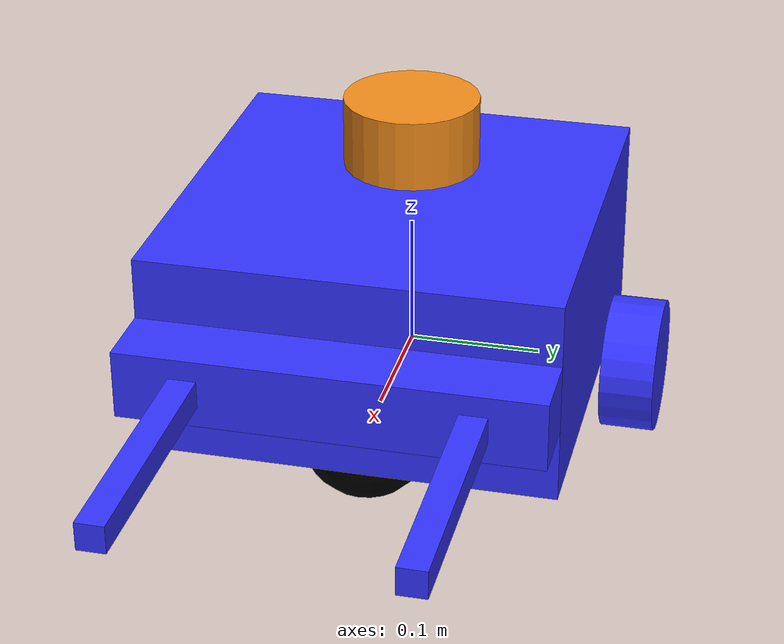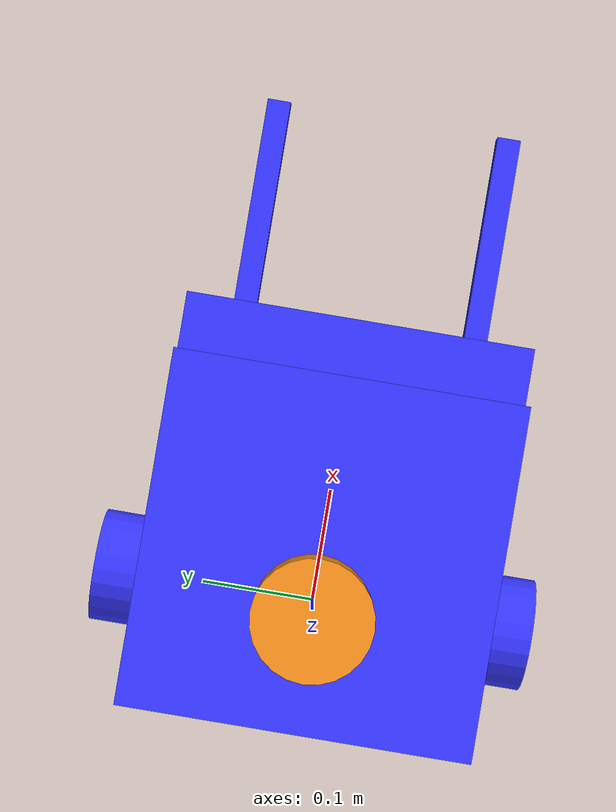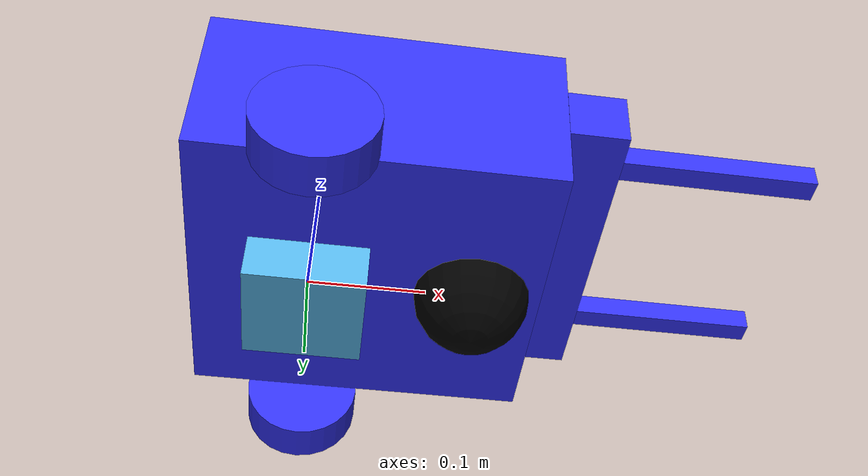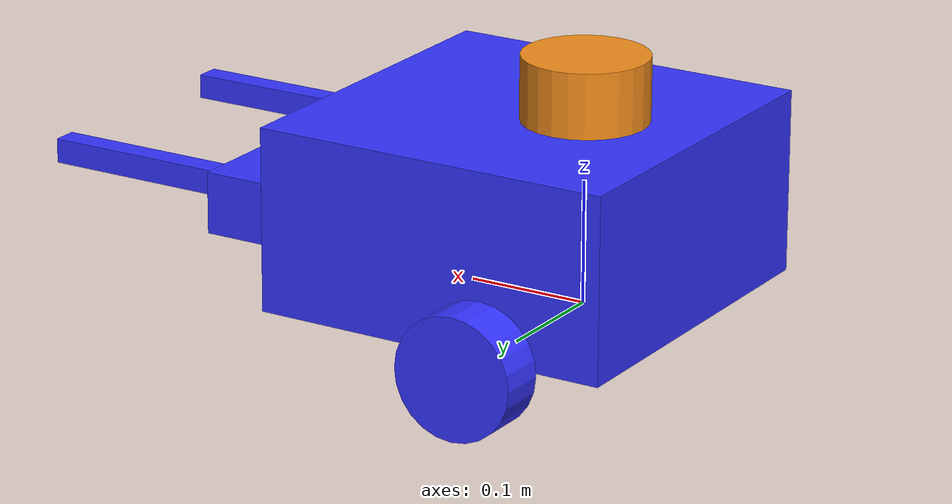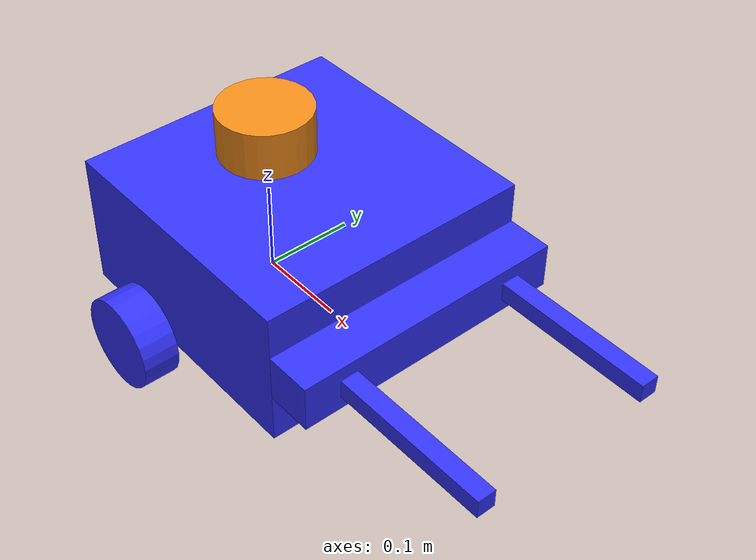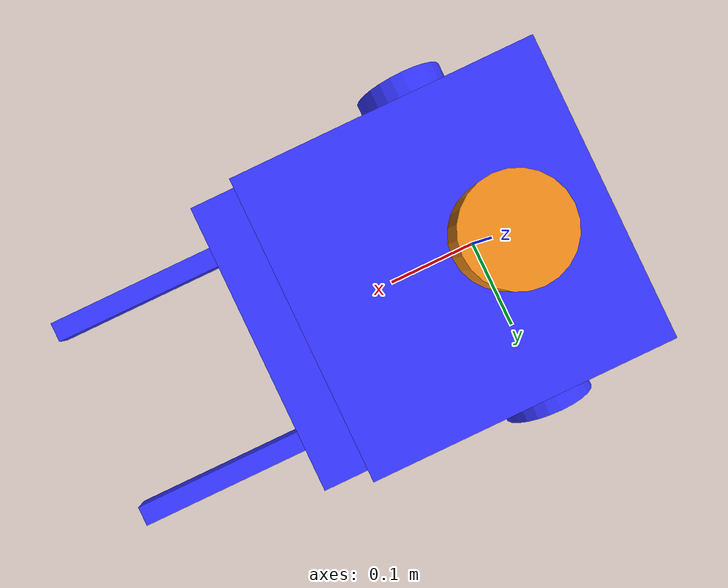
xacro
<?xml version="1.0"?>

<!-- Things to setup -> ctrl+f "OPTION" -->

<robot xmlns:xacro="http://www.ros.org/wiki/xacro">

    <xacro:include filename="inertial_macros.xacro" />

    <material name="white">
        <color rgba="1 1 1 1" />
    </material>

    <material name="orange">
        <color rgba="1 0.3 0.1 1" />
    </material>

    <material name="blue">
        <color rgba="0.2 0.2 1 1" />
    </material>

    <material name="black">
        <color rgba="0 0 0 1" />
    </material>

    <!-- BASE LINK -->

    <link name="base_link"></link>

    <!-- CHASSIS LINK -->

    <joint name="chassis_joint" type="fixed">
        <parent link="base_link" />
        <child link="chassis" />
        <origin xyz="-0.1 0 0" />
    </joint>

    <link name="chassis">
        <visual>
            <origin xyz="0.15 0 0.075" />
            <geometry>
                <box size="0.3 0.3 0.15" />
            </geometry>
            <material name="blue" />
        </visual>
        <collision>
            <origin xyz="0.15 0 0.075" />
            <geometry>
                <box size="0.3 0.3 0.15" />
            </geometry>
        </collision>
        <xacro:inertial_box mass="0.5" x="0.3" y="0.3" z="0.15">
            <origin xyz="0.15 0 0.075" rpy="0 0 0" />
        </xacro:inertial_box>
    </link>

    <gazebo reference="chassis">
        <material>Gazebo/White</material>
    </gazebo>

    <!-- LEFT WHEEL LINK -->

    <joint name="left_wheel_joint" type="continuous">
        <parent link="base_link" />
        <child link="left_wheel" />
        <origin xyz="0 0.175 0" rpy="-${pi/2} 0 0" /> <!--CHANGING TO CHECK RVIZ2-->
        <axis xyz="0 0 1" />
    </joint>

    <link name="left_wheel">
        <visual>
            <geometry>
                <cylinder radius="0.05" length="0.04" />
            </geometry>
            <material name="blue" />
        </visual>
        <collision>
            <geometry>
                <cylinder radius="0.05" length="0.04" />
            </geometry>
        </collision>
        <xacro:inertial_cylinder mass="0.1" length="0.04" radius="0.05">
            <origin xyz="0 0 0" rpy="0 0 0" />
        </xacro:inertial_cylinder>
    </link>

    <gazebo reference="left_wheel">
        <material>Gazebo/Blue</material>
    </gazebo>

    <!-- RIGHT WHEEL LINK -->

    <joint name="right_wheel_joint" type="continuous">
        <parent link="base_link" />
        <child link="right_wheel" />
        <origin xyz="0 -0.175 0" rpy="${pi/2} 0 0" />
        <axis xyz="0 0 -1" />
    </joint>

    <link name="right_wheel">
        <visual>
            <geometry>
                <cylinder radius="0.05" length="0.04" />
            </geometry>
            <material name="blue" />
        </visual>
        <collision>
            <geometry>
                <cylinder radius="0.05" length="0.04" />
            </geometry>
        </collision>
        <xacro:inertial_cylinder mass="0.1" length="0.04" radius="0.05">
            <origin xyz="0 0 0" rpy="0 0 0" />
        </xacro:inertial_cylinder>
    </link>

    <gazebo reference="right_wheel">
        <material>Gazebo/Blue</material>
    </gazebo>

    <!-- CASTER WHEEL LINK -->

    <joint name="caster_wheel_joint" type="fixed">
        <parent link="chassis" />
        <child link="caster_wheel" />
        <origin xyz="0.24 0 0" />
    </joint>

    <link name="caster_wheel">
        <visual>
            <geometry>
                <sphere radius="0.05" />
            </geometry>
            <material name="black" />
        </visual>
        <collision>
            <geometry>
                <sphere radius="0.05" />
            </geometry>
        </collision>
        <xacro:inertial_sphere mass="0.8" radius="0.05">
            <origin xyz="0 0 0" rpy="0 0 0" />
        </xacro:inertial_sphere>
    </link>

    <gazebo reference="caster_wheel">
        <material>Gazebo/Black</material>
        <mu1 value="0.001" />
        <mu2 value="0.001" />
    </gazebo>

    <!-- LIDAR LINK -->

    <link name="lidar_link">

        <xacro:inertial_cylinder mass="0.125" length="0.055" radius="0.508">
            <origin xyz="0 0 0" rpy="0 0 0" />
        </xacro:inertial_cylinder>

        <collision>
            <origin xyz="0 0 0" rpy="0 0 0" />
            <geometry>
                <cylinder radius="0.0508" length="0.055" />
            </geometry>
        </collision>

        <visual>
            <origin xyz="0 0 0" rpy="0 0 0" />
            <geometry>
                <cylinder radius="0.0508" length="0.055" />
            </geometry>
        </visual>
    </link>

    <joint name="lidar_joint" type="fixed">
        <parent link="base_link" />
        <child link="lidar_link" />
        <origin xyz="0 0 0.175" rpy="0 0 0" />
    </joint>

    <gazebo reference="lidar_link">
        <sensor name="lidar" type="ray">
            <!-- OPTIONS -->
            <always_on>false</always_on>
            <visualize>false</visualize>
            <update_rate>1</update_rate>
            <ray>
                <scan>
                    <horizontal>
                        <samples>360</samples>
                        <resolution>1.000000</resolution>
                        <min_angle>0.000000</min_angle>
                        <max_angle>6.280000</max_angle>
                    </horizontal>
                </scan>
                <range>
                    <min>0.120000</min>
                    <max>3.5</max>
                    <resolution>0.015000</resolution>
                </range>
                <noise>
                    <type>gaussian</type>
                    <mean>0.0</mean>
                    <stddev>0.01</stddev>
                </noise>
            </ray>
            <plugin name="scan" filename="libgazebo_ros_ray_sensor.so">
                <ros>
                    <remapping>~/out:=scan</remapping>
                </ros>
                <output_type>sensor_msgs/LaserScan</output_type>
                <frame_name>lidar_link</frame_name>
            </plugin>
        </sensor>
        <material>Gazebo/Orange</material>
    </gazebo>

    <!-- GRIPPER AXIS LINK -->

    <joint name="gripper_axis_joint" type="prismatic">
        <parent link="base_link" />
        <child link="gripper_axis_link" />
        <limit effort="1000.0" lower="0.02" upper="0.1" velocity="0.5" />
        <origin xyz="0.225 0 0.02" rpy="0 -1.57 0" /> <!-- was 0.225 -->
    </joint>

    <link name="gripper_axis_link">
        <visual>
            <geometry>
                <box size="0.05 0.3 0.05" />
                <origin xyz="0 0 0" rpy="0 0 0" />
            </geometry>
            <material name="blue" />
        </visual>
        <collision>
            <geometry>
                <box size="0.1 0.2 0.1" />
            </geometry>
        </collision>
        <xacro:inertial_box mass="0.01" x="0.1" y="0.2" z="0.1">
            <origin xyz="0 0 0" rpy="0 0 0" />
        </xacro:inertial_box>
    </link>

    <gazebo reference="gripper_axis_link">
        <material>Gazebo/Blue</material>
    </gazebo>

    <!-- GRIPPER RIGHT LINK -->

    <joint name="gripper_right_joint" type="prismatic">
        <parent link="gripper_axis_link" />
        <child link="gripper_right_link" />
        <limit effort="1000.0" lower="0" upper="0.08" velocity="0.5" />
        <origin xyz="0 -0.1 -0.1" rpy="0 0 1.57" />
    </joint>

    <link name="gripper_right_link">
        <visual>
            <geometry>
                <box size="0.02 0.02 0.2" />
                <origin xyz="0 -0.05 0" rpy="0 0 0" />
            </geometry>
            <material name="blue" />
        </visual>
        <collision>
            <geometry>
                <box size="0.02 0.02 0.2" />
            </geometry>
        </collision>
        <xacro:inertial_box mass="0.01" x="0.02" y="0.02" z="0.2">
            <origin xyz="0 0 0" rpy="0 0 0" />
        </xacro:inertial_box>
    </link>

    <gazebo reference="gripper_right_link">
        <material>Gazebo/white</material>
    </gazebo>

    <!-- GRIPPER LEFT LINK -->

    <joint name="gripper_left_joint" type="prismatic">
        <parent link="gripper_axis_link" />
        <child link="gripper_left_link" />
        <limit effort="1000.0" lower="-0.08" upper="0" velocity="0.5" />
        <origin xyz="0 0.1 -0.1" rpy="0 0 1.57" />
    </joint>

    <link name="gripper_left_link">
        <visual>
            <geometry>
                <box size="0.02 0.02 0.2" />
                <origin xyz="0 0.05 0" rpy="0 0 0" />
            </geometry>
            <material name="blue" />
        </visual>
        <collision>
            <geometry>
                <box size="0.02 0.02 0.2" />
                <origin xyz="0 0 0" rpy="0 0 0" />
            </geometry>
        </collision>
        <xacro:inertial_box mass="0.01" x="0.02" y="0.02" z="0.2">
            <origin xyz="0 0 0" rpy="0 0 0" />
        </xacro:inertial_box>
    </link>

    <gazebo reference="gripper_left_link">
        <material>Gazebo/white</material>
    </gazebo>

    <!-- GAZEBO ROS2 CONTROL -->

    <ros2_control name="GazeboSystem" type="system">
        <hardware>
            <plugin>gazebo_ros2_control/GazeboSystem</plugin>
        </hardware>
        <joint name="gripper_right_joint">
            <command_interface name="position">
                <param name="min">-1</param>
                <param name="max">1</param>
            </command_interface>
            <state_interface name="position">
                <state_interface name="velocity" />
                <state_interface name="effort" />
            </state_interface>
        </joint>
        <joint name="gripper_left_joint">
            <command_interface name="position">
                <param name="min">-1</param>
                <param name="max">1</param>
            </command_interface>
            <state_interface name="position">
                <state_interface name="velocity" />
                <state_interface name="effort" />
            </state_interface>
        </joint>
        <joint name="gripper_axis_joint">
            <command_interface name="position">
                <param name="min">0</param>
                <param name="max">1</param>
            </command_interface>
            <state_interface name="position">
                <state_interface name="velocity" />
                <state_interface name="effort" />
            </state_interface>
        </joint>
    </ros2_control>

    <!-- IMU LINK -->

    <joint name="imu_joint" type="fixed">
        <parent link="base_link" />
        <child link="imu_link" />
        <origin xyz="0 0 0.01" />
    </joint>

    <link name="imu_link">
        <visual>
            <geometry>
                <box size="0.1 0.1 0.1" />
            </geometry>
        </visual>

        <collision>
            <geometry>
                <box size="0.1 0.1 0.1" />
            </geometry>
        </collision>

        <xacro:inertial_box mass="0.1" x="0.1" y="0.1" z="0.1">
            <origin xyz="0 0 0" rpy="0 0 0" />
        </xacro:inertial_box>
    </link>

    <gazebo reference="imu_link">
        <sensor name="imu_sensor" type="imu">
            <plugin filename="libgazebo_ros_imu_sensor.so" name="imu_plugin">
                <ros>
                    <namespace>/demo</namespace>
                    <remapping>~/out:=imu</remapping>
                </ros>
                <initial_orientation_as_reference>false</initial_orientation_as_reference>
            </plugin>
            <always_on>true</always_on>
            <update_rate>100</update_rate>
            <visualize>true</visualize>
            <imu>
                <angular_velocity>
                    <x>
                        <noise type="gaussian">
                            <mean>0.0</mean>
                            <stddev>2e-4</stddev>
                            <bias_mean>0.0000075</bias_mean>
                            <bias_stddev>0.0000008</bias_stddev>
                        </noise>
                    </x>
                    <y>
                        <noise type="gaussian">
                            <mean>0.0</mean>
                            <stddev>2e-4</stddev>
                            <bias_mean>0.0000075</bias_mean>
                            <bias_stddev>0.0000008</bias_stddev>
                        </noise>
                    </y>
                    <z>
                        <noise type="gaussian">
                            <mean>0.0</mean>
                            <stddev>2e-4</stddev>
                            <bias_mean>0.0000075</bias_mean>
                            <bias_stddev>0.0000008</bias_stddev>
                        </noise>
                    </z>
                </angular_velocity>
                <linear_acceleration>
                    <x>
                        <noise type="gaussian">
                            <mean>0.0</mean>
                            <stddev>1.7e-2</stddev>
                            <bias_mean>0.1</bias_mean>
                            <bias_stddev>0.001</bias_stddev>
                        </noise>
                    </x>
                    <y>
                        <noise type="gaussian">
                            <mean>0.0</mean>
                            <stddev>1.7e-2</stddev>
                            <bias_mean>0.1</bias_mean>
                            <bias_stddev>0.001</bias_stddev>
                        </noise>
                    </y>
                    <z>
                        <noise type="gaussian">
                            <mean>0.0</mean>
                            <stddev>1.7e-2</stddev>
                            <bias_mean>0.1</bias_mean>
                            <bias_stddev>0.001</bias_stddev>
                        </noise>
                    </z>
                </linear_acceleration>
            </imu>
        </sensor>
    </gazebo>

</robot>
